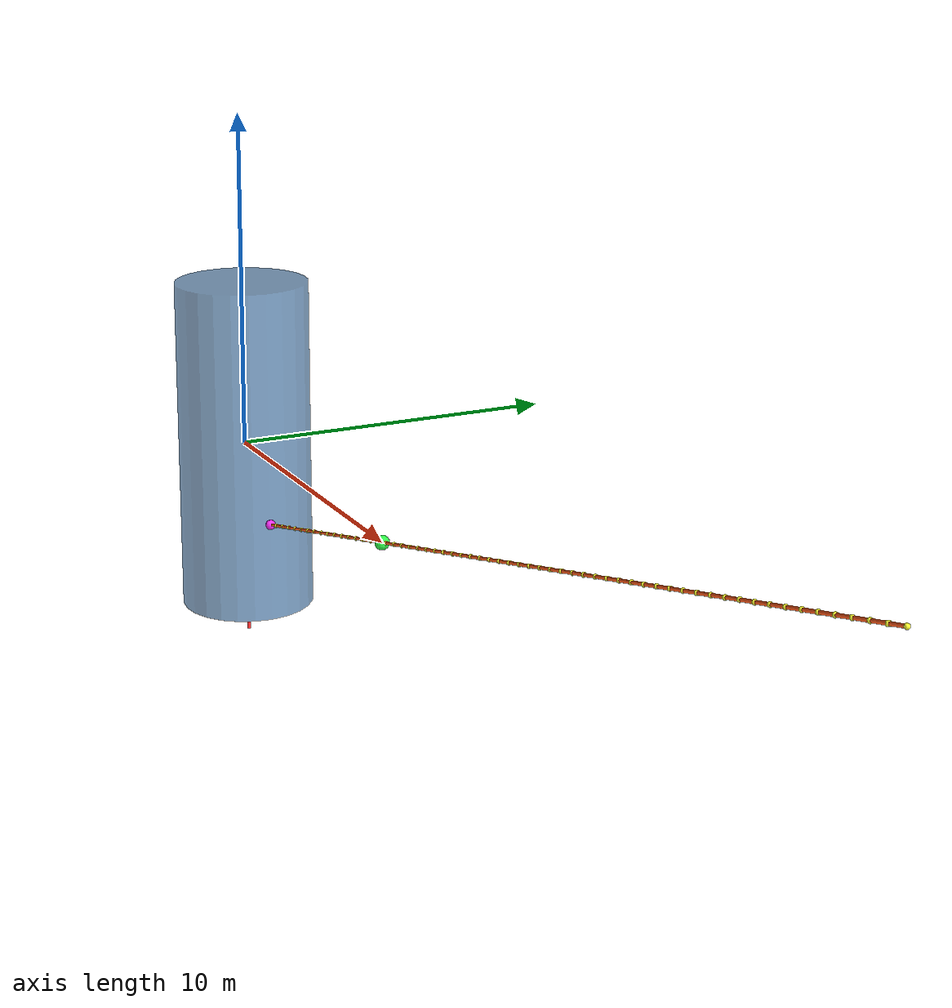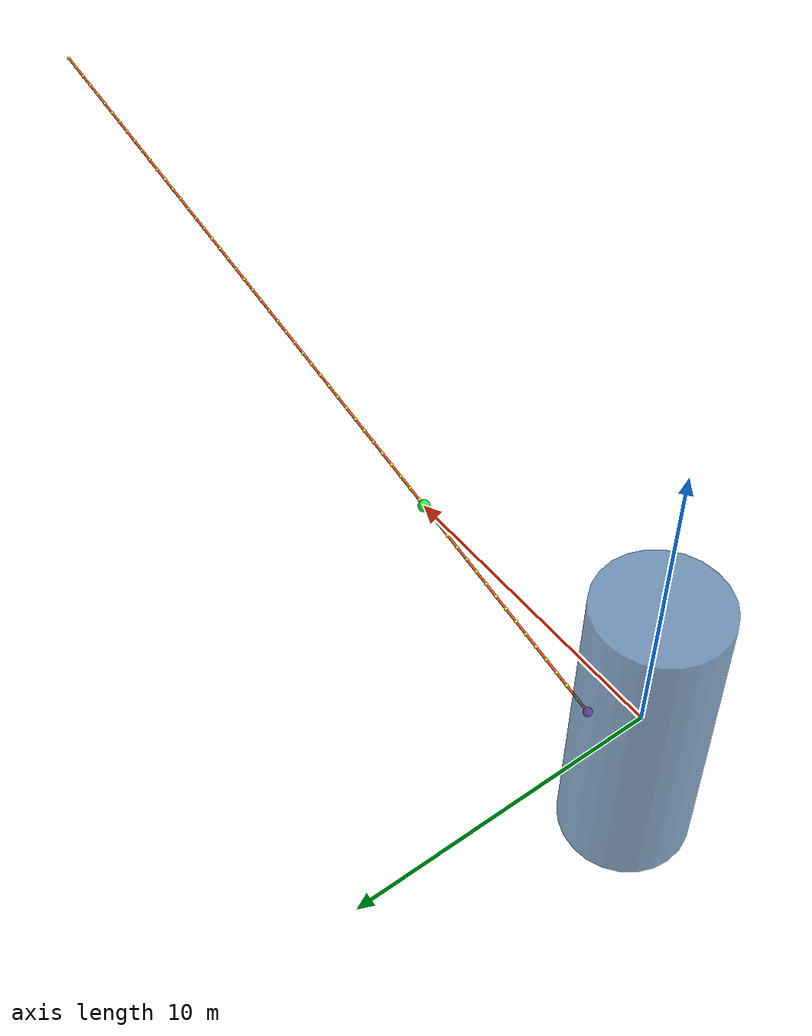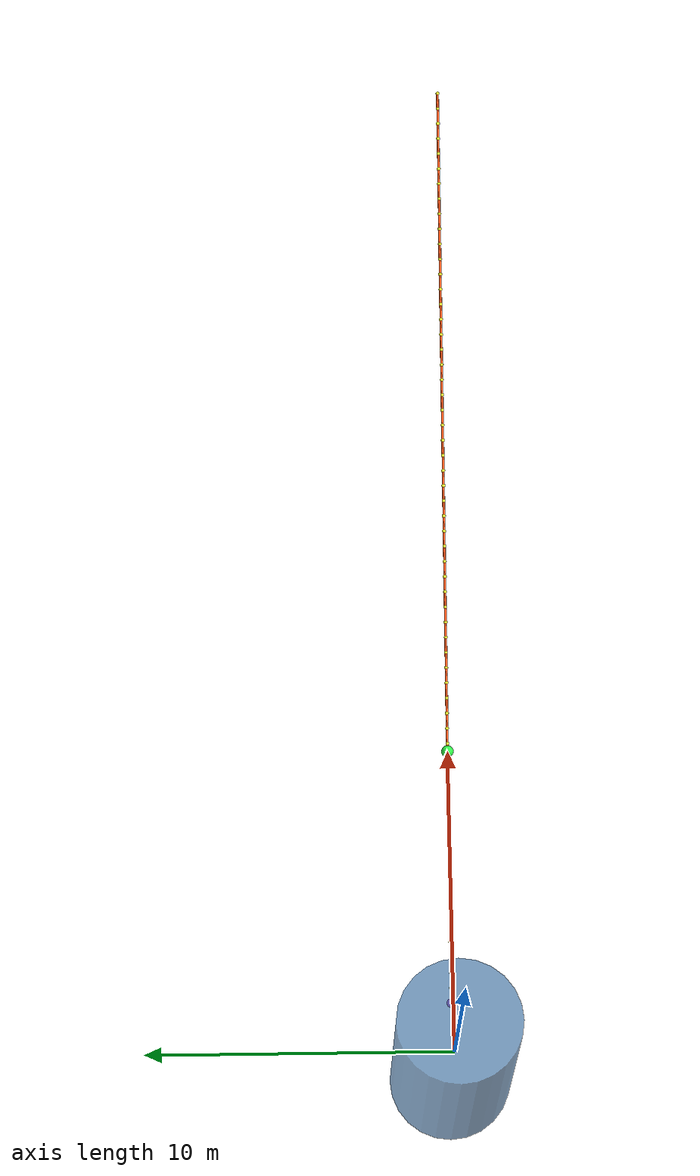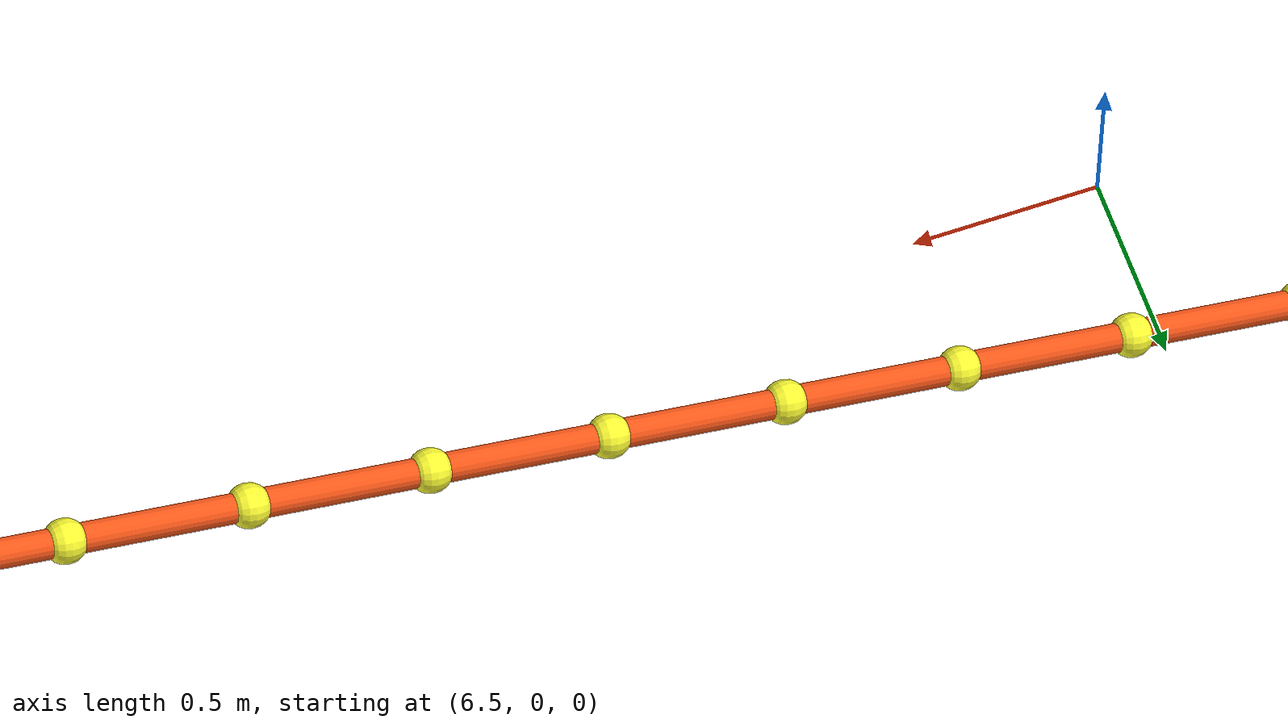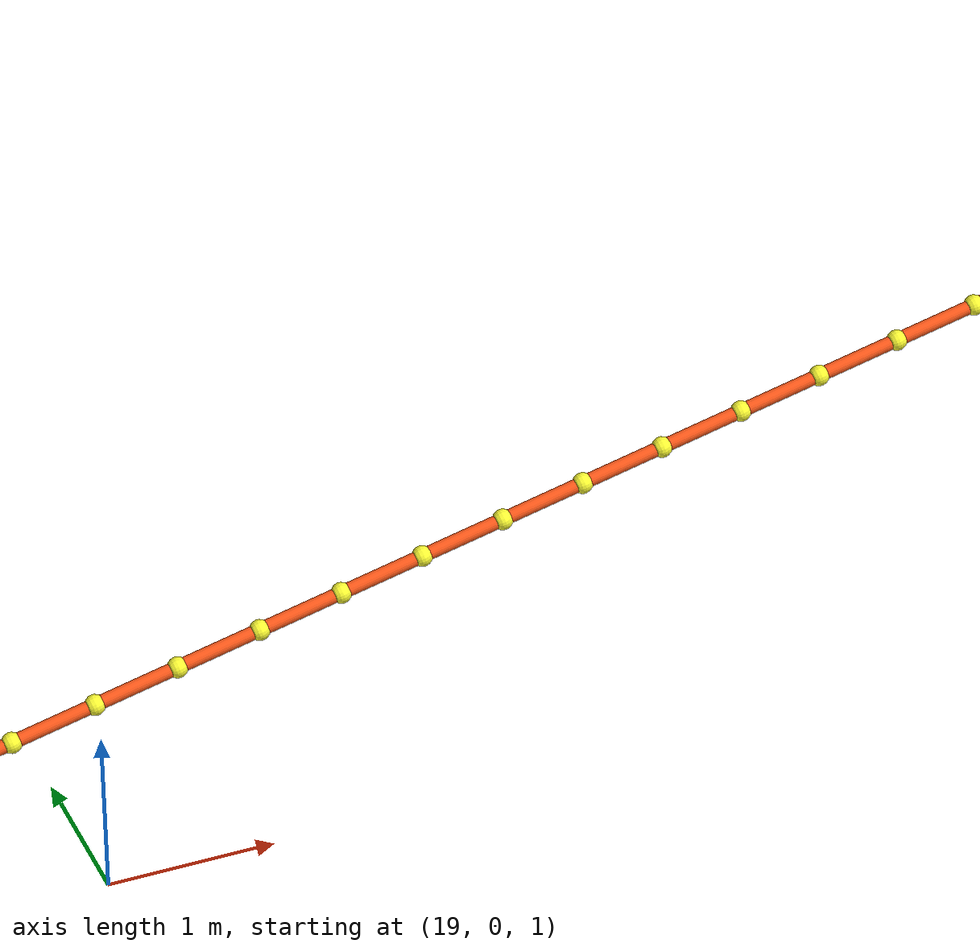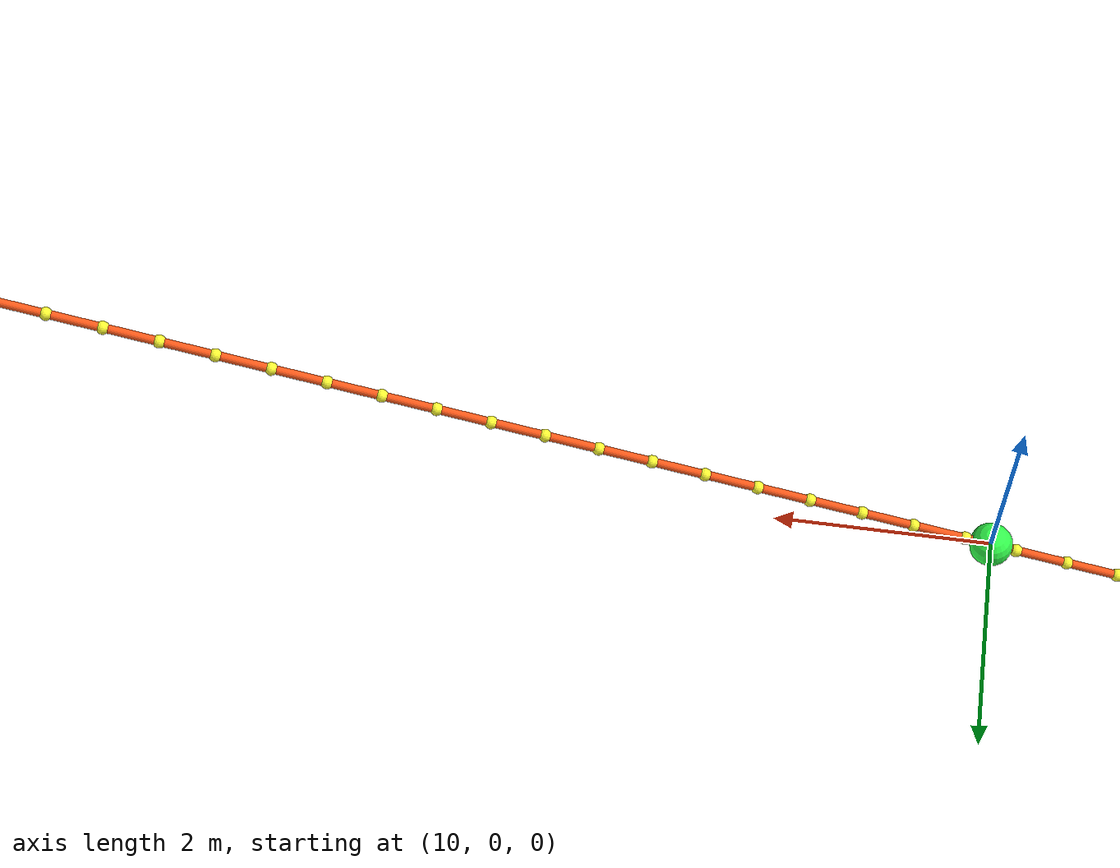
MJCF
<mujoco model="capstan_cable_wrap">
  <compiler angle="radian" autolimits="true"/>

  <option gravity="0 0 0" timestep="0.001" iterations="50" solver="Newton" tolerance="1e-10"/>

  <size nconmax="2000" njmax="4000"/>

  <default>
    <default class="cable_segment">
      <geom type="capsule" size="0.04" mass="0.2" condim="4" friction="1.0 0.005 0.001" rgba="1.0 0.35 0.1 1"/>
      <joint type="ball" damping="0.1" armature="0.01"/>
    </default>
    <default class="visual_only">
      <geom contype="0" conaffinity="0"/>
    </default>
  </default>

  <visual>
    <headlight ambient="0.4 0.4 0.4" diffuse="0.8 0.8 0.8" specular="0.2 0.2 0.2"/>
    <rgba haze="0.1 0.15 0.2 1"/>
    <quality shadowsize="4096"/>
  </visual>

  <asset>
    <texture type="skybox" builtin="gradient" rgb1="0.05 0.1 0.2" rgb2="0 0 0" width="512" height="512"/>
    <material name="cylinder_mat" rgba="0.25 0.45 0.65 0.7" specular="0.8" shininess="0.9"/>
    <material name="origin_mat" rgba="0.2 1.0 0.3 1" emission="0.8"/>
    <material name="attach_mat" rgba="1.0 0.2 1.0 1" emission="0.8"/>
    <material name="node_mat" rgba="1.0 1.0 0.2 1" emission="0.3"/>
  </asset>

  <worldbody>
    <body name="cylinder" pos="0 0 0">
      <joint name="cylinder_rotation" type="hinge" axis="0 0 1" damping="0"/>
      <geom name="cylinder_geom" type="cylinder" size="2.0 5.0" material="cylinder_mat" condim="4" friction="1.0 0.005 0.001"/>
      <geom class="visual_only" type="cylinder" size="0.05 6.0" rgba="1 0 0 0.8"/>
      <site name="attach_site" pos="2.0 0 -2.0" size="0.15" material="attach_mat"/>
      <body name="cable_0" pos="2.0 0 -2.0" quat="0.7882054380161092 0.0 0.6154122094026356 0.0">
        <joint name="cable_0_joint" class="cable_segment"/>
        <geom class="cable_segment" fromto="0 0 0 0 0 0.5"/>
        <site name="cable_0_end" pos="0 0 0.5" size="0.06" material="node_mat"/>
        <body name="cable_1" pos="0 0 0.5">
          <joint name="cable_1_joint" class="cable_segment"/>
          <geom class="cable_segment" fromto="0 0 0 0 0 0.5"/>
          <site name="cable_1_end" pos="0 0 0.5" size="0.06" material="node_mat"/>
        <body name="cable_2" pos="0 0 0.5">
          <joint name="cable_2_joint" class="cable_segment"/>
          <geom class="cable_segment" fromto="0 0 0 0 0 0.5"/>
          <site name="cable_2_end" pos="0 0 0.5" size="0.06" material="node_mat"/>
        <body name="cable_3" pos="0 0 0.5">
          <joint name="cable_3_joint" class="cable_segment"/>
          <geom class="cable_segment" fromto="0 0 0 0 0 0.5"/>
          <site name="cable_3_end" pos="0 0 0.5" size="0.06" material="node_mat"/>
        <body name="cable_4" pos="0 0 0.5">
          <joint name="cable_4_joint" class="cable_segment"/>
          <geom class="cable_segment" fromto="0 0 0 0 0 0.5"/>
          <site name="cable_4_end" pos="0 0 0.5" size="0.06" material="node_mat"/>
        <body name="cable_5" pos="0 0 0.5">
          <joint name="cable_5_joint" class="cable_segment"/>
          <geom class="cable_segment" fromto="0 0 0 0 0 0.5"/>
          <site name="cable_5_end" pos="0 0 0.5" size="0.06" material="node_mat"/>
        <body name="cable_6" pos="0 0 0.5">
          <joint name="cable_6_joint" class="cable_segment"/>
          <geom class="cable_segment" fromto="0 0 0 0 0 0.5"/>
          <site name="cable_6_end" pos="0 0 0.5" size="0.06" material="node_mat"/>
        <body name="cable_7" pos="0 0 0.5">
          <joint name="cable_7_joint" class="cable_segment"/>
          <geom class="cable_segment" fromto="0 0 0 0 0 0.5"/>
          <site name="cable_7_end" pos="0 0 0.5" size="0.06" material="node_mat"/>
        <body name="cable_8" pos="0 0 0.5">
          <joint name="cable_8_joint" class="cable_segment"/>
          <geom class="cable_segment" fromto="0 0 0 0 0 0.5"/>
          <site name="cable_8_end" pos="0 0 0.5" size="0.06" material="node_mat"/>
        <body name="cable_9" pos="0 0 0.5">
          <joint name="cable_9_joint" class="cable_segment"/>
          <geom class="cable_segment" fromto="0 0 0 0 0 0.5"/>
          <site name="cable_9_end" pos="0 0 0.5" size="0.06" material="node_mat"/>
        <body name="cable_10" pos="0 0 0.5">
          <joint name="cable_10_joint" class="cable_segment"/>
          <geom class="cable_segment" fromto="0 0 0 0 0 0.5"/>
          <site name="cable_10_end" pos="0 0 0.5" size="0.06" material="node_mat"/>
        <body name="cable_11" pos="0 0 0.5">
          <joint name="cable_11_joint" class="cable_segment"/>
          <geom class="cable_segment" fromto="0 0 0 0 0 0.5"/>
          <site name="cable_11_end" pos="0 0 0.5" size="0.06" material="node_mat"/>
        <body name="cable_12" pos="0 0 0.5">
          <joint name="cable_12_joint" class="cable_segment"/>
          <geom class="cable_segment" fromto="0 0 0 0 0 0.5"/>
          <site name="cable_12_end" pos="0 0 0.5" size="0.06" material="node_mat"/>
        <body name="cable_13" pos="0 0 0.5">
          <joint name="cable_13_joint" class="cable_segment"/>
          <geom class="cable_segment" fromto="0 0 0 0 0 0.5"/>
          <site name="cable_13_end" pos="0 0 0.5" size="0.06" material="node_mat"/>
        <body name="cable_14" pos="0 0 0.5">
          <joint name="cable_14_joint" class="cable_segment"/>
          <geom class="cable_segment" fromto="0 0 0 0 0 0.5"/>
          <site name="cable_14_end" pos="0 0 0.5" size="0.06" material="node_mat"/>
        <body name="cable_15" pos="0 0 0.5">
          <joint name="cable_15_joint" class="cable_segment"/>
          <geom class="cable_segment" fromto="0 0 0 0 0 0.5"/>
          <site name="cable_15_end" pos="0 0 0.5" size="0.06" material="node_mat"/>
        <body name="cable_16" pos="0 0 0.5">
          <joint name="cable_16_joint" class="cable_segment"/>
          <geom class="cable_segment" fromto="0 0 0 0 0 0.5"/>
          <site name="cable_16_end" pos="0 0 0.5" size="0.06" material="node_mat"/>
        <body name="cable_17" pos="0 0 0.5">
          <joint name="cable_17_joint" class="cable_segment"/>
          <geom class="cable_segment" fromto="0 0 0 0 0 0.5"/>
          <site name="cable_17_end" pos="0 0 0.5" size="0.06" material="node_mat"/>
        <body name="cable_18" pos="0 0 0.5">
          <joint name="cable_18_joint" class="cable_segment"/>
          <geom class="cable_segment" fromto="0 0 0 0 0 0.5"/>
          <site name="cable_18_end" pos="0 0 0.5" size="0.06" material="node_mat"/>
        <body name="cable_19" pos="0 0 0.5">
          <joint name="cable_19_joint" class="cable_segment"/>
          <geom class="cable_segment" fromto="0 0 0 0 0 0.5"/>
          <site name="cable_19_end" pos="0 0 0.5" size="0.06" material="node_mat"/>
        <body name="cable_20" pos="0 0 0.5">
          <joint name="cable_20_joint" class="cable_segment"/>
          <geom class="cable_segment" fromto="0 0 0 0 0 0.5"/>
          <site name="cable_20_end" pos="0 0 0.5" size="0.06" material="node_mat"/>
        <body name="cable_21" pos="0 0 0.5">
          <joint name="cable_21_joint" class="cable_segment"/>
          <geom class="cable_segment" fromto="0 0 0 0 0 0.5"/>
          <site name="cable_21_end" pos="0 0 0.5" size="0.06" material="node_mat"/>
        <body name="cable_22" pos="0 0 0.5">
          <joint name="cable_22_joint" class="cable_segment"/>
          <geom class="cable_segment" fromto="0 0 0 0 0 0.5"/>
          <site name="cable_22_end" pos="0 0 0.5" size="0.06" material="node_mat"/>
        <body name="cable_23" pos="0 0 0.5">
          <joint name="cable_23_joint" class="cable_segment"/>
          <geom class="cable_segment" fromto="0 0 0 0 0 0.5"/>
          <site name="cable_23_end" pos="0 0 0.5" size="0.06" material="node_mat"/>
        <body name="cable_24" pos="0 0 0.5">
          <joint name="cable_24_joint" class="cable_segment"/>
          <geom class="cable_segment" fromto="0 0 0 0 0 0.5"/>
          <site name="cable_24_end" pos="0 0 0.5" size="0.06" material="node_mat"/>
        <body name="cable_25" pos="0 0 0.5">
          <joint name="cable_25_joint" class="cable_segment"/>
          <geom class="cable_segment" fromto="0 0 0 0 0 0.5"/>
          <site name="cable_25_end" pos="0 0 0.5" size="0.06" material="node_mat"/>
        <body name="cable_26" pos="0 0 0.5">
          <joint name="cable_26_joint" class="cable_segment"/>
          <geom class="cable_segment" fromto="0 0 0 0 0 0.5"/>
          <site name="cable_26_end" pos="0 0 0.5" size="0.06" material="node_mat"/>
        <body name="cable_27" pos="0 0 0.5">
          <joint name="cable_27_joint" class="cable_segment"/>
          <geom class="cable_segment" fromto="0 0 0 0 0 0.5"/>
          <site name="cable_27_end" pos="0 0 0.5" size="0.06" material="node_mat"/>
        <body name="cable_28" pos="0 0 0.5">
          <joint name="cable_28_joint" class="cable_segment"/>
          <geom class="cable_segment" fromto="0 0 0 0 0 0.5"/>
          <site name="cable_28_end" pos="0 0 0.5" size="0.06" material="node_mat"/>
        <body name="cable_29" pos="0 0 0.5">
          <joint name="cable_29_joint" class="cable_segment"/>
          <geom class="cable_segment" fromto="0 0 0 0 0 0.5"/>
          <site name="cable_29_end" pos="0 0 0.5" size="0.06" material="node_mat"/>
        <body name="cable_30" pos="0 0 0.5">
          <joint name="cable_30_joint" class="cable_segment"/>
          <geom class="cable_segment" fromto="0 0 0 0 0 0.5"/>
          <site name="cable_30_end" pos="0 0 0.5" size="0.06" material="node_mat"/>
        <body name="cable_31" pos="0 0 0.5">
          <joint name="cable_31_joint" class="cable_segment"/>
          <geom class="cable_segment" fromto="0 0 0 0 0 0.5"/>
          <site name="cable_31_end" pos="0 0 0.5" size="0.06" material="node_mat"/>
        <body name="cable_32" pos="0 0 0.5">
          <joint name="cable_32_joint" class="cable_segment"/>
          <geom class="cable_segment" fromto="0 0 0 0 0 0.5"/>
          <site name="cable_32_end" pos="0 0 0.5" size="0.06" material="node_mat"/>
        <body name="cable_33" pos="0 0 0.5">
          <joint name="cable_33_joint" class="cable_segment"/>
          <geom class="cable_segment" fromto="0 0 0 0 0 0.5"/>
          <site name="cable_33_end" pos="0 0 0.5" size="0.06" material="node_mat"/>
        <body name="cable_34" pos="0 0 0.5">
          <joint name="cable_34_joint" class="cable_segment"/>
          <geom class="cable_segment" fromto="0 0 0 0 0 0.5"/>
          <site name="cable_34_end" pos="0 0 0.5" size="0.06" material="node_mat"/>
        <body name="cable_35" pos="0 0 0.5">
          <joint name="cable_35_joint" class="cable_segment"/>
          <geom class="cable_segment" fromto="0 0 0 0 0 0.5"/>
          <site name="cable_35_end" pos="0 0 0.5" size="0.06" material="node_mat"/>
        <body name="cable_36" pos="0 0 0.5">
          <joint name="cable_36_joint" class="cable_segment"/>
          <geom class="cable_segment" fromto="0 0 0 0 0 0.5"/>
          <site name="cable_36_end" pos="0 0 0.5" size="0.06" material="node_mat"/>
        <body name="cable_37" pos="0 0 0.5">
          <joint name="cable_37_joint" class="cable_segment"/>
          <geom class="cable_segment" fromto="0 0 0 0 0 0.5"/>
          <site name="cable_37_end" pos="0 0 0.5" size="0.06" material="node_mat"/>
        <body name="cable_38" pos="0 0 0.5">
          <joint name="cable_38_joint" class="cable_segment"/>
          <geom class="cable_segment" fromto="0 0 0 0 0 0.5"/>
          <site name="cable_38_end" pos="0 0 0.5" size="0.06" material="node_mat"/>
        <body name="cable_39" pos="0 0 0.5">
          <joint name="cable_39_joint" class="cable_segment"/>
          <geom class="cable_segment" fromto="0 0 0 0 0 0.5"/>
          <site name="cable_39_end" pos="0 0 0.5" size="0.06" material="node_mat"/>
        <body name="cable_40" pos="0 0 0.5">
          <joint name="cable_40_joint" class="cable_segment"/>
          <geom class="cable_segment" fromto="0 0 0 0 0 0.5"/>
          <site name="cable_40_end" pos="0 0 0.5" size="0.06" material="node_mat"/>
        <body name="cable_41" pos="0 0 0.5">
          <joint name="cable_41_joint" class="cable_segment"/>
          <geom class="cable_segment" fromto="0 0 0 0 0 0.5"/>
          <site name="cable_41_end" pos="0 0 0.5" size="0.06" material="node_mat"/>
        <body name="cable_42" pos="0 0 0.5">
          <joint name="cable_42_joint" class="cable_segment"/>
          <geom class="cable_segment" fromto="0 0 0 0 0 0.5"/>
          <site name="cable_42_end" pos="0 0 0.5" size="0.06" material="node_mat"/>
        <body name="cable_43" pos="0 0 0.5">
          <joint name="cable_43_joint" class="cable_segment"/>
          <geom class="cable_segment" fromto="0 0 0 0 0 0.5"/>
          <site name="cable_43_end" pos="0 0 0.5" size="0.06" material="node_mat"/>
        <body name="cable_44" pos="0 0 0.5">
          <joint name="cable_44_joint" class="cable_segment"/>
          <geom class="cable_segment" fromto="0 0 0 0 0 0.5"/>
          <site name="cable_44_end" pos="0 0 0.5" size="0.06" material="node_mat"/>
        <body name="cable_45" pos="0 0 0.5">
          <joint name="cable_45_joint" class="cable_segment"/>
          <geom class="cable_segment" fromto="0 0 0 0 0 0.5"/>
          <site name="cable_45_end" pos="0 0 0.5" size="0.06" material="node_mat"/>
        <body name="cable_46" pos="0 0 0.5">
          <joint name="cable_46_joint" class="cable_segment"/>
          <geom class="cable_segment" fromto="0 0 0 0 0 0.5"/>
          <site name="cable_46_end" pos="0 0 0.5" size="0.06" material="node_mat"/>
        <body name="cable_47" pos="0 0 0.5">
          <joint name="cable_47_joint" class="cable_segment"/>
          <geom class="cable_segment" fromto="0 0 0 0 0 0.5"/>
          <site name="cable_47_end" pos="0 0 0.5" size="0.06" material="node_mat"/>
        <body name="cable_48" pos="0 0 0.5">
          <joint name="cable_48_joint" class="cable_segment"/>
          <geom class="cable_segment" fromto="0 0 0 0 0 0.5"/>
          <site name="cable_48_end" pos="0 0 0.5" size="0.06" material="node_mat"/>
        <body name="cable_49" pos="0 0 0.5">
          <joint name="cable_49_joint" class="cable_segment"/>
          <geom class="cable_segment" fromto="0 0 0 0 0 0.5"/>
          <site name="cable_49_end" pos="0 0 0.5" size="0.06" material="node_mat"/>
        <body name="cable_50" pos="0 0 0.5">
          <joint name="cable_50_joint" class="cable_segment"/>
          <geom class="cable_segment" fromto="0 0 0 0 0 0.5"/>
          <site name="cable_50_end" pos="0 0 0.5" size="0.06" material="node_mat"/>
        <body name="cable_51" pos="0 0 0.5">
          <joint name="cable_51_joint" class="cable_segment"/>
          <geom class="cable_segment" fromto="0 0 0 0 0 0.5"/>
          <site name="cable_51_end" pos="0 0 0.5" size="0.06" material="node_mat"/>
        <body name="cable_52" pos="0 0 0.5">
          <joint name="cable_52_joint" class="cable_segment"/>
          <geom class="cable_segment" fromto="0 0 0 0 0 0.5"/>
          <site name="cable_52_end" pos="0 0 0.5" size="0.06" material="node_mat"/>
        <body name="cable_53" pos="0 0 0.5">
          <joint name="cable_53_joint" class="cable_segment"/>
          <geom class="cable_segment" fromto="0 0 0 0 0 0.5"/>
          <site name="cable_53_end" pos="0 0 0.5" size="0.06" material="node_mat"/>
        <body name="cable_54" pos="0 0 0.5">
          <joint name="cable_54_joint" class="cable_segment"/>
          <geom class="cable_segment" fromto="0 0 0 0 0 0.5"/>
          <site name="cable_54_end" pos="0 0 0.5" size="0.06" material="node_mat"/>
        <body name="cable_55" pos="0 0 0.5">
          <joint name="cable_55_joint" class="cable_segment"/>
          <geom class="cable_segment" fromto="0 0 0 0 0 0.5"/>
          <site name="cable_55_end" pos="0 0 0.5" size="0.06" material="node_mat"/>
        <body name="cable_56" pos="0 0 0.5">
          <joint name="cable_56_joint" class="cable_segment"/>
          <geom class="cable_segment" fromto="0 0 0 0 0 0.5"/>
          <site name="cable_56_end" pos="0 0 0.5" size="0.06" material="node_mat"/>
        <body name="cable_57" pos="0 0 0.5">
          <joint name="cable_57_joint" class="cable_segment"/>
          <geom class="cable_segment" fromto="0 0 0 0 0 0.5"/>
          <site name="cable_57_end" pos="0 0 0.5" size="0.06" material="node_mat"/>
        <body name="cable_58" pos="0 0 0.5">
          <joint name="cable_58_joint" class="cable_segment"/>
          <geom class="cable_segment" fromto="0 0 0 0 0 0.5"/>
          <site name="cable_58_end" pos="0 0 0.5" size="0.06" material="node_mat"/>
        <body name="cable_59" pos="0 0 0.5">
          <joint name="cable_59_joint" class="cable_segment"/>
          <geom class="cable_segment" fromto="0 0 0 0 0 0.5"/>
          <site name="cable_59_end" pos="0 0 0.5" size="0.06" material="node_mat"/>
        </body>
        </body>
        </body>
        </body>
        </body>
        </body>
        </body>
        </body>
        </body>
        </body>
        </body>
        </body>
        </body>
        </body>
        </body>
        </body>
        </body>
        </body>
        </body>
        </body>
        </body>
        </body>
        </body>
        </body>
        </body>
        </body>
        </body>
        </body>
        </body>
        </body>
        </body>
        </body>
        </body>
        </body>
        </body>
        </body>
        </body>
        </body>
        </body>
        </body>
        </body>
        </body>
        </body>
        </body>
        </body>
        </body>
        </body>
        </body>
        </body>
        </body>
        </body>
        </body>
        </body>
        </body>
        </body>
        </body>
        </body>
        </body>
        </body>
        </body>
    </body>
    <body name="origin_anchor" pos="10.0 0.0 0.0">
      <site name="origin_site" size="0.2" material="origin_mat"/>
    </body>
  </worldbody>

  <tendon>
    <spatial name="origin_tendon" width="0.03" rgba="0.8 0.8 0.2 1" stiffness="50000" damping="1000">
      <site site="cable_59_end"/>
      <site site="origin_site"/>
    </spatial>
  </tendon>

  <actuator>
    <velocity name="cylinder_motor" joint="cylinder_rotation" kv="100000"/>
  </actuator>

  <sensor>
    <jointpos name="cylinder_angle" joint="cylinder_rotation"/>
    <jointvel name="cylinder_vel" joint="cylinder_rotation"/>
    <tendonpos name="tendon_length" tendon="origin_tendon"/>
  </sensor>
</mujoco>
